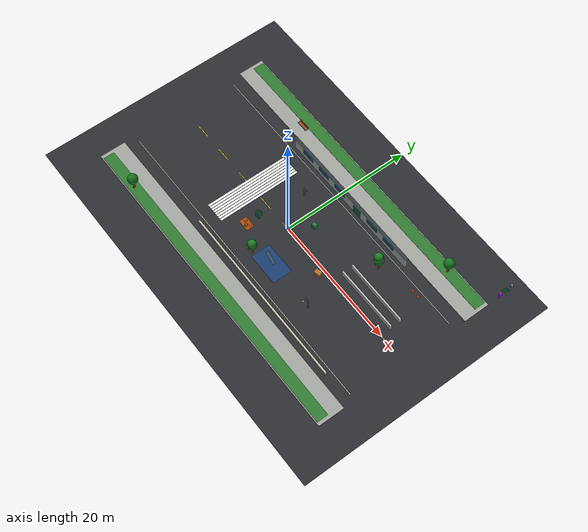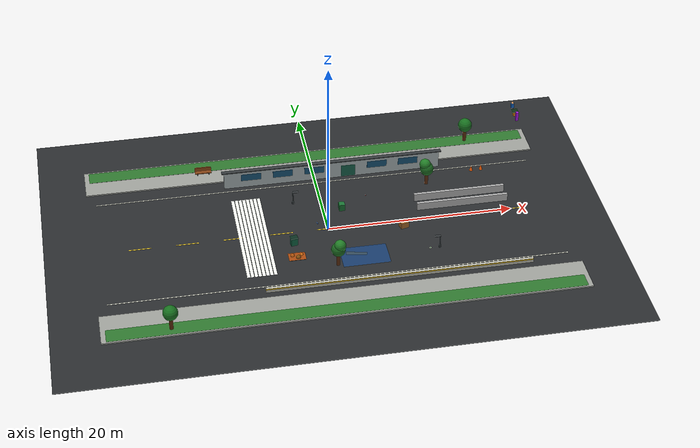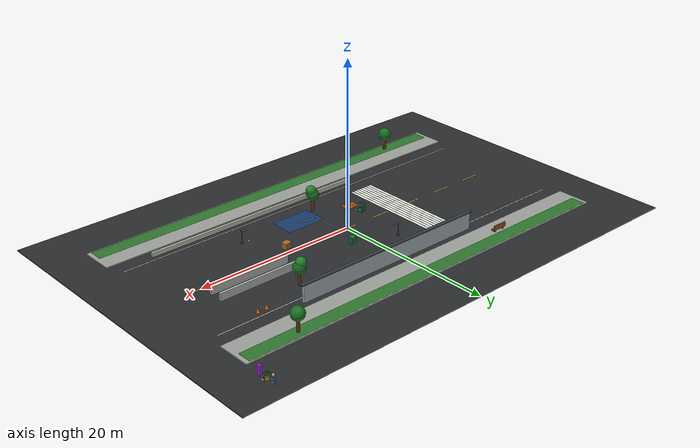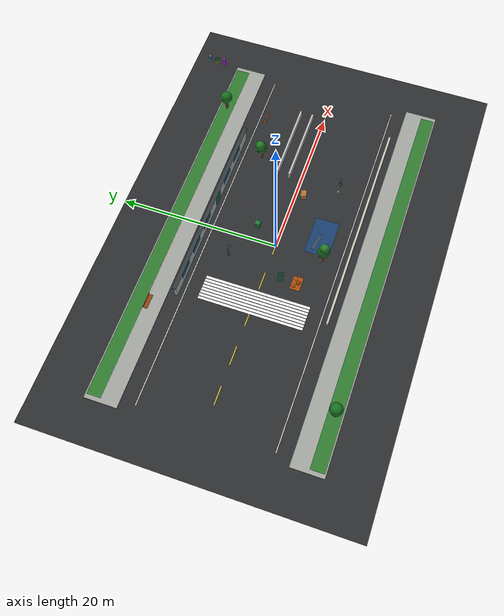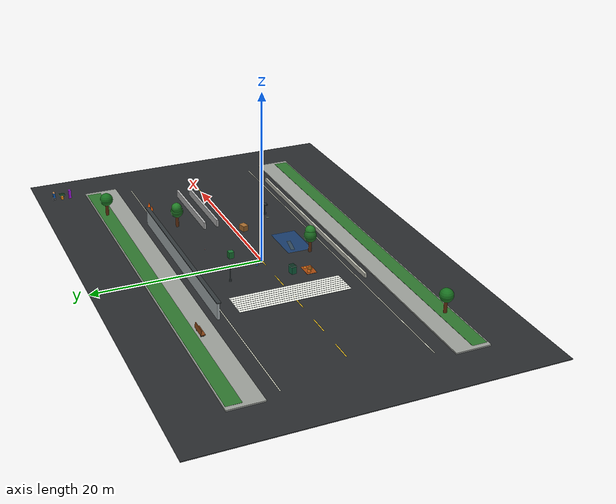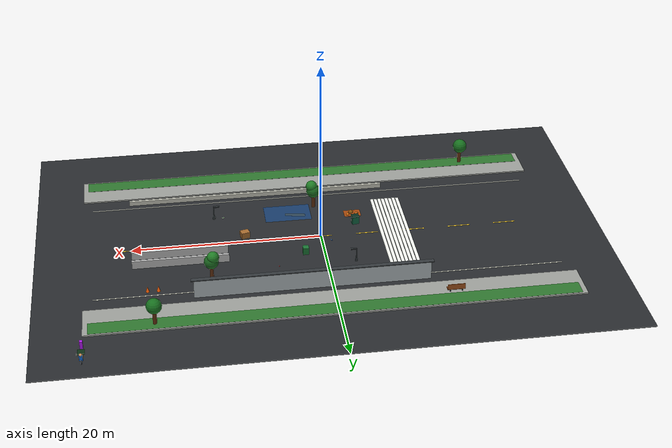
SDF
<?xml version='1.0' encoding='utf-8'?>
<sdf version="1.9">
  <world name="sanitation_structured_world">
    <plugin filename="gz-sim-physics-system" name="gz::sim::systems::Physics" />
    <plugin filename="gz-sim-user-commands-system" name="gz::sim::systems::UserCommands" />
    <plugin filename="gz-sim-scene-broadcaster-system" name="gz::sim::systems::SceneBroadcaster" />
    <plugin filename="gz-sim-sensors-system" name="gz::sim::systems::Sensors">
      <render_engine>ogre2</render_engine>
    </plugin>
    <plugin filename="gz-sim-navsat-system" name="gz::sim::systems::NavSat" />
    <spherical_coordinates>
      <surface_model>EARTH_WGS84</surface_model>
      <world_frame_orientation>ENU</world_frame_orientation>
      <latitude_deg>31.2304</latitude_deg>
      <longitude_deg>121.4737</longitude_deg>
      <elevation>0</elevation>
      <heading_deg>0</heading_deg>
    </spherical_coordinates>
    <gravity>0 0 -9.81</gravity>
    <physics name="1ms" type="ignored">
      <max_step_size>0.005</max_step_size>
      <real_time_factor>1.0</real_time_factor>
    </physics>
    <scene>
      <ambient>0.58 0.60 0.62 1</ambient>
      <background>0.72 0.84 0.94 1</background>
      <shadows>true</shadows>
    </scene>
    <light type="directional" name="sun">
      <cast_shadows>true</cast_shadows>
      <pose>0 0 10 0 0 0</pose>
      <diffuse>0.96 0.91 0.82 1</diffuse>
      <specular>0.16 0.16 0.16 1</specular>
      <direction>-0.45 0.25 -1.0</direction>
    </light>
    <model name="world_overview_camera">
      <static>true</static>
      <pose>0 0 28 0 1.57079632679 0</pose>
      <link name="link">
        <sensor name="overview" type="camera">
          <always_on>true</always_on>
          <update_rate>1</update_rate>
          <topic>world_overview/image</topic>
          <camera>
            <horizontal_fov>1.55</horizontal_fov>
            <image>
              <width>960</width>
              <height>640</height>
              <format>R8G8B8</format>
            </image>
            <clip>
              <near>0.1</near>
              <far>100</far>
            </clip>
          </camera>
        </sensor>
      </link>
    </model>
    <model name="asphalt_ground">
      <static>true</static>
      <link name="link">
        <collision name="collision">
          <geometry>
            <box>
              <size>60 40 0.10</size>
            </box>
          </geometry>
          <surface>
            <friction>
              <ode>
                <mu>0.85</mu>
                <mu2>0.85</mu2>
              </ode>
            </friction>
          </surface>
        </collision>
        <visual name="visual">
          <geometry>
            <box>
              <size>60 40 0.10</size>
            </box>
          </geometry>
          <material>
            <ambient>0.105 0.115 0.12 1</ambient>
            <diffuse>0.16 0.17 0.18 1</diffuse>
            <specular>0.02 0.02 0.02 1</specular>
          </material>
        </visual>
      </link>
      <pose>0 0 -0.05 0 0 0</pose>
    </model>
    <model name="north_sidewalk">
      <static>true</static>
      <pose>0 12 0.08 0 0 0</pose>
      <link name="link">
        <collision name="collision">
          <geometry>
            <box>
              <size>50 4 0.16</size>
            </box>
          </geometry>
        </collision>
        <visual name="visual">
          <geometry>
            <box>
              <size>50 4 0.16</size>
            </box>
          </geometry>
          <material>
            <ambient>0.47 0.48 0.47 1</ambient>
            <diffuse>0.61 0.62 0.60 1</diffuse>
            <specular>0.04 0.04 0.04 1</specular>
          </material>
        </visual>
      </link>
    </model>
    <model name="south_sidewalk">
      <static>true</static>
      <pose>0 -12 0.08 0 0 0</pose>
      <link name="link">
        <collision name="collision">
          <geometry>
            <box>
              <size>50 4 0.16</size>
            </box>
          </geometry>
        </collision>
        <visual name="visual">
          <geometry>
            <box>
              <size>50 4 0.16</size>
            </box>
          </geometry>
          <material>
            <ambient>0.47 0.48 0.47 1</ambient>
            <diffuse>0.61 0.62 0.60 1</diffuse>
            <specular>0.04 0.04 0.04 1</specular>
          </material>
        </visual>
      </link>
    </model>
    <!-- Paint and planting surfaces are visual-only because they do not add
         occupancy. Raised sidewalks above remain the authoritative collision
         and navigation boundary. -->
    <model name="campus_road_markings">
      <static>true</static>
      <pose>0 0 0.006 0 0 0</pose>
      <link name="link">
        <visual name="edge_line_north"><pose>0 8.2 0 0 0 0</pose><geometry><box><size>48 0.10 0.008</size></box></geometry><material><ambient>0.88 0.89 0.82 1</ambient><diffuse>0.98 0.98 0.90 1</diffuse></material></visual>
        <visual name="edge_line_south"><pose>0 -8.2 0 0 0 0</pose><geometry><box><size>48 0.10 0.008</size></box></geometry><material><ambient>0.88 0.89 0.82 1</ambient><diffuse>0.98 0.98 0.90 1</diffuse></material></visual>
        <visual name="center_dash_01"><pose>-20 0 0 0 0 0</pose><geometry><box><size>2.4 0.12 0.008</size></box></geometry><material><ambient>0.88 0.72 0.12 1</ambient><diffuse>1.0 0.82 0.16 1</diffuse></material></visual>
        <visual name="center_dash_02"><pose>-15 0 0 0 0 0</pose><geometry><box><size>2.4 0.12 0.008</size></box></geometry><material><ambient>0.88 0.72 0.12 1</ambient><diffuse>1.0 0.82 0.16 1</diffuse></material></visual>
        <visual name="center_dash_03"><pose>-10 0 0 0 0 0</pose><geometry><box><size>2.4 0.12 0.008</size></box></geometry><material><ambient>0.88 0.72 0.12 1</ambient><diffuse>1.0 0.82 0.16 1</diffuse></material></visual>
        <visual name="center_dash_04"><pose>-5 0 0 0 0 0</pose><geometry><box><size>2.4 0.12 0.008</size></box></geometry><material><ambient>0.88 0.72 0.12 1</ambient><diffuse>1.0 0.82 0.16 1</diffuse></material></visual>
        <visual name="center_dash_05"><pose>0 0 0 0 0 0</pose><geometry><box><size>2.4 0.12 0.008</size></box></geometry><material><ambient>0.88 0.72 0.12 1</ambient><diffuse>1.0 0.82 0.16 1</diffuse></material></visual>
        <visual name="center_dash_06"><pose>5 0 0 0 0 0</pose><geometry><box><size>2.4 0.12 0.008</size></box></geometry><material><ambient>0.88 0.72 0.12 1</ambient><diffuse>1.0 0.82 0.16 1</diffuse></material></visual>
        <visual name="center_dash_07"><pose>10 0 0 0 0 0</pose><geometry><box><size>2.4 0.12 0.008</size></box></geometry><material><ambient>0.88 0.72 0.12 1</ambient><diffuse>1.0 0.82 0.16 1</diffuse></material></visual>
        <visual name="center_dash_08"><pose>15 0 0 0 0 0</pose><geometry><box><size>2.4 0.12 0.008</size></box></geometry><material><ambient>0.88 0.72 0.12 1</ambient><diffuse>1.0 0.82 0.16 1</diffuse></material></visual>
        <visual name="center_dash_09"><pose>20 0 0 0 0 0</pose><geometry><box><size>2.4 0.12 0.008</size></box></geometry><material><ambient>0.88 0.72 0.12 1</ambient><diffuse>1.0 0.82 0.16 1</diffuse></material></visual>
      </link>
    </model>
    <model name="campus_crosswalk_west">
      <static>true</static>
      <pose>-8 0 0.009 0 0 0</pose>
      <link name="link">
        <visual name="stripe_01"><pose>-1.4 0 0 0 0 0</pose><geometry><box><size>0.34 13.0 0.01</size></box></geometry><material><ambient>0.82 0.84 0.82 1</ambient><diffuse>0.96 0.97 0.94 1</diffuse></material></visual>
        <visual name="stripe_02"><pose>-1.0 0 0 0 0 0</pose><geometry><box><size>0.34 13.0 0.01</size></box></geometry><material><ambient>0.82 0.84 0.82 1</ambient><diffuse>0.96 0.97 0.94 1</diffuse></material></visual>
        <visual name="stripe_03"><pose>-0.6 0 0 0 0 0</pose><geometry><box><size>0.34 13.0 0.01</size></box></geometry><material><ambient>0.82 0.84 0.82 1</ambient><diffuse>0.96 0.97 0.94 1</diffuse></material></visual>
        <visual name="stripe_04"><pose>-0.2 0 0 0 0 0</pose><geometry><box><size>0.34 13.0 0.01</size></box></geometry><material><ambient>0.82 0.84 0.82 1</ambient><diffuse>0.96 0.97 0.94 1</diffuse></material></visual>
        <visual name="stripe_05"><pose>0.2 0 0 0 0 0</pose><geometry><box><size>0.34 13.0 0.01</size></box></geometry><material><ambient>0.82 0.84 0.82 1</ambient><diffuse>0.96 0.97 0.94 1</diffuse></material></visual>
        <visual name="stripe_06"><pose>0.6 0 0 0 0 0</pose><geometry><box><size>0.34 13.0 0.01</size></box></geometry><material><ambient>0.82 0.84 0.82 1</ambient><diffuse>0.96 0.97 0.94 1</diffuse></material></visual>
        <visual name="stripe_07"><pose>1.0 0 0 0 0 0</pose><geometry><box><size>0.34 13.0 0.01</size></box></geometry><material><ambient>0.82 0.84 0.82 1</ambient><diffuse>0.96 0.97 0.94 1</diffuse></material></visual>
        <visual name="stripe_08"><pose>1.4 0 0 0 0 0</pose><geometry><box><size>0.34 13.0 0.01</size></box></geometry><material><ambient>0.82 0.84 0.82 1</ambient><diffuse>0.96 0.97 0.94 1</diffuse></material></visual>
      </link>
    </model>
    <model name="campus_green_verges">
      <static>true</static>
      <pose>0 0 0.171 0 0 0</pose>
      <link name="link">
        <visual name="north_verge"><pose>0 13.0 0 0 0 0</pose><geometry><box><size>49 1.7 0.018</size></box></geometry><material><ambient>0.12 0.34 0.13 1</ambient><diffuse>0.18 0.46 0.18 1</diffuse></material></visual>
        <visual name="south_verge"><pose>0 -13.0 0 0 0 0</pose><geometry><box><size>49 1.7 0.018</size></box></geometry><material><ambient>0.12 0.34 0.13 1</ambient><diffuse>0.18 0.46 0.18 1</diffuse></material></visual>
      </link>
    </model>
    <model name="corridor_wall_left">
      <static>true</static>
      <pose>15 3.2 0.45 0 0 0</pose>
      <link name="link">
        <collision name="collision">
          <geometry>
            <box>
              <size>10 0.25 0.9</size>
            </box>
          </geometry>
        </collision>
        <visual name="visual">
          <geometry>
            <box>
              <size>10 0.25 0.9</size>
            </box>
          </geometry>
        </visual>
      </link>
    </model>
    <model name="corridor_wall_right">
      <static>true</static>
      <pose>15 1.6 0.45 0 0 0</pose>
      <link name="link">
        <collision name="collision">
          <geometry>
            <box>
              <size>10 0.25 0.9</size>
            </box>
          </geometry>
        </collision>
        <visual name="visual">
          <geometry>
            <box>
              <size>10 0.25 0.9</size>
            </box>
          </geometry>
        </visual>
      </link>
    </model>
    <model name="puddle_zone">
      <static>true</static>
      <pose>3 -5 0.005 0 0 0</pose>
      <link name="link">
        <collision name="collision">
          <geometry>
            <box>
              <size>5 3 0.01</size>
            </box>
          </geometry>
          <surface>
            <friction>
              <ode>
                <mu>0.25</mu>
                <mu2>0.25</mu2>
              </ode>
            </friction>
          </surface>
        </collision>
        <visual name="puddle_main_visual">
          <geometry>
            <box>
              <size>5 3 0.01</size>
            </box>
          </geometry>
          <material>
            <ambient>0.05 0.25 0.55 0.45</ambient>
            <diffuse>0.05 0.35 0.75 0.45</diffuse>
          </material>
          <transparency>0.55</transparency>
        </visual>
        <visual name="puddle_highlight_visual">
          <pose>-0.8 0.45 0.006 0 0 -0.18</pose>
          <geometry><box><size>2.2 0.45 0.004</size></box></geometry>
          <material><ambient>0.22 0.50 0.72 0.30</ambient><diffuse>0.32 0.62 0.82 0.30</diffuse></material>
          <transparency>0.72</transparency>
        </visual>
      </link>
    </model>
    <model name="trash_bin_obstacle">
      <static>true</static>
      <pose>2 3 0.45 0 0 0</pose>
      <link name="link">
        <collision name="collision">
          <geometry>
            <box>
              <size>0.7 0.7 0.9</size>
            </box>
          </geometry>
        </collision>
        <visual name="bin_body_visual">
          <geometry>
            <box>
              <size>0.62 0.62 0.78</size>
            </box>
          </geometry>
          <material>
            <ambient>0.1 0.35 0.15 1</ambient>
            <diffuse>0.1 0.45 0.2 1</diffuse>
          </material>
        </visual>
      </link>
    </model>
    <model name="cardboard_box_obstacle">
      <static>true</static>
      <pose>8 -1 0.35 0 0 0.25</pose>
      <link name="link">
        <collision name="collision">
          <geometry>
            <box>
              <size>0.9 0.7 0.7</size>
            </box>
          </geometry>
        </collision>
        <visual name="visual">
          <geometry>
            <box>
              <size>0.9 0.7 0.7</size>
            </box>
          </geometry>
          <material>
            <ambient>0.55 0.32 0.12 1</ambient>
            <diffuse>0.65 0.42 0.18 1</diffuse>
          </material>
        </visual>
      </link>
    </model>
    <model name="dynamic_pedestrian_box">
      <static>true</static>
      <pose>25 18 0.55 0 0 0</pose>
      <link name="link">
        <collision name="collision">
          <geometry>
            <box>
              <size>0.55 0.55 1.10</size>
            </box>
          </geometry>
        </collision>
        <!-- Human-readable silhouette; the legacy box collision is retained
             so SetEntityPose dynamic-obstacle regressions keep the same body. -->
        <visual name="pedestrian_torso_visual"><pose>0 0 0.12 0 0 0</pose><geometry><box><size>0.34 0.25 0.52</size></box></geometry><material><ambient>0.06 0.30 0.62 1</ambient><diffuse>0.08 0.42 0.82 1</diffuse></material></visual>
        <visual name="pedestrian_head_visual"><pose>0 0 0.49 0 0 0</pose><geometry><sphere><radius>0.15</radius></sphere></geometry><material><ambient>0.72 0.48 0.30 1</ambient><diffuse>0.84 0.60 0.39 1</diffuse></material></visual>
        <visual name="pedestrian_left_leg_visual"><pose>0 0.10 -0.28 0 0 0</pose><geometry><box><size>0.13 0.12 0.46</size></box></geometry><material><ambient>0.07 0.08 0.10 1</ambient><diffuse>0.10 0.12 0.15 1</diffuse></material></visual>
        <visual name="pedestrian_right_leg_visual"><pose>0 -0.10 -0.28 0 0 0</pose><geometry><box><size>0.13 0.12 0.46</size></box></geometry><material><ambient>0.07 0.08 0.10 1</ambient><diffuse>0.10 0.12 0.15 1</diffuse></material></visual>
        <visual name="pedestrian_safety_vest_visual"><pose>0.176 0 0.13 0 0 0</pose><geometry><box><size>0.012 0.27 0.22</size></box></geometry><material><ambient>0.88 0.36 0.02 1</ambient><diffuse>1.0 0.48 0.03 1</diffuse></material></visual>
      </link>
    </model>
    <!-- AUTO-01 height-banded safety fixtures. They remain outside the
         benchmark area until a test moves them with SetEntityPose. -->
    <model name="auto01_low_obstacle">
      <static>true</static>
      <pose>25 17 0.175 0 0 0</pose>
      <link name="link">
        <collision name="collision">
          <geometry><box><size>0.30 0.30 0.35</size></box></geometry>
        </collision>
        <visual name="box_body_visual">
          <geometry><box><size>0.30 0.30 0.35</size></box></geometry>
          <material>
            <ambient>0.95 0.50 0.05 1</ambient>
            <diffuse>1.0 0.60 0.08 1</diffuse>
          </material>
        </visual>
        <visual name="box_tape_visual"><pose>0 0 0.356 0 0 0</pose><geometry><box><size>0.16 0.71 0.012</size></box></geometry><material><ambient>0.76 0.67 0.44 1</ambient><diffuse>0.88 0.77 0.50 1</diffuse></material></visual>
        <visual name="box_label_visual"><pose>0.456 0 0.06 0 0 0</pose><geometry><box><size>0.012 0.28 0.18</size></box></geometry><material><ambient>0.84 0.84 0.76 1</ambient><diffuse>0.96 0.96 0.88 1</diffuse></material></visual>
        <visual name="bin_lid_visual"><pose>0 0 0.43 0 0 0</pose><geometry><box><size>0.70 0.70 0.10</size></box></geometry><material><ambient>0.035 0.12 0.06 1</ambient><diffuse>0.05 0.18 0.08 1</diffuse></material></visual>
        <visual name="bin_opening_visual"><pose>0.316 0 0.18 0 0 0</pose><geometry><box><size>0.012 0.36 0.20</size></box></geometry><material><ambient>0.015 0.02 0.02 1</ambient><diffuse>0.02 0.025 0.025 1</diffuse></material></visual>
        <visual name="bin_recycle_strip_visual"><pose>0.323 0 -0.12 0 0 0</pose><geometry><box><size>0.014 0.39 0.08</size></box></geometry><material><ambient>0.02 0.48 0.68 1</ambient><diffuse>0.03 0.62 0.82 1</diffuse></material></visual>
      </link>
    </model>
    <model name="auto01_tall_obstacle">
      <static>true</static>
      <pose>25 16 0.55 0 0 0</pose>
      <link name="link">
        <collision name="collision">
          <geometry><box><size>0.30 0.30 1.10</size></box></geometry>
        </collision>
        <visual name="visual">
          <geometry><box><size>0.30 0.30 1.10</size></box></geometry>
          <material>
            <ambient>0.55 0.05 0.85 1</ambient>
            <diffuse>0.70 0.10 0.95 1</diffuse>
          </material>
        </visual>
      </link>
    </model>
    <model name="trash_bottle_01">
      <static>true</static>
      <pose>-1 1 0.12 1.57 0 0.4</pose>
      <link name="link">
        <collision name="collision">
          <geometry>
            <cylinder>
              <radius>0.045</radius>
              <length>0.24</length>
            </cylinder>
          </geometry>
        </collision>
        <visual name="bottle_body_visual">
          <geometry>
            <cylinder>
              <radius>0.045</radius>
              <length>0.24</length>
            </cylinder>
          </geometry>
          <material>
            <ambient>0.1 0.35 0.8 1</ambient>
            <diffuse>0.15 0.45 0.9 1</diffuse>
          </material>
        </visual>
        <visual name="bottle_cap_visual"><pose>0 0 0.128 0 0 0</pose><geometry><cylinder><radius>0.026</radius><length>0.022</length></cylinder></geometry><material><ambient>0.04 0.12 0.50 1</ambient><diffuse>0.06 0.18 0.68 1</diffuse></material></visual>
        <visual name="bottle_label_visual"><geometry><cylinder><radius>0.047</radius><length>0.055</length></cylinder></geometry><material><ambient>0.72 0.82 0.90 1</ambient><diffuse>0.82 0.92 1.0 1</diffuse></material></visual>
      </link>
    </model>
    <model name="trash_can_01">
      <static>true</static>
      <pose>5 5 0.055 1.57 0 0.2</pose>
      <link name="link">
        <collision name="collision">
          <geometry>
            <cylinder>
              <radius>0.035</radius>
              <length>0.11</length>
            </cylinder>
          </geometry>
        </collision>
        <visual name="can_body_visual">
          <geometry>
            <cylinder>
              <radius>0.035</radius>
              <length>0.11</length>
            </cylinder>
          </geometry>
          <material>
            <ambient>0.75 0.1 0.1 1</ambient>
            <diffuse>0.9 0.15 0.15 1</diffuse>
          </material>
        </visual>
        <visual name="can_band_visual"><geometry><cylinder><radius>0.037</radius><length>0.035</length></cylinder></geometry><material><ambient>0.82 0.82 0.78 1</ambient><diffuse>0.94 0.94 0.90 1</diffuse></material></visual>
      </link>
    </model>
    <model name="trash_paper_01">
      <static>true</static>
      <pose>10 -5 0.012 0 0 0.5</pose>
      <link name="link">
        <collision name="collision">
          <geometry>
            <box>
              <size>0.24 0.18 0.02</size>
            </box>
          </geometry>
        </collision>
        <visual name="carton_body_visual">
          <geometry>
            <box>
              <size>0.24 0.18 0.02</size>
            </box>
          </geometry>
          <material>
            <ambient>0.9 0.9 0.8 1</ambient>
            <diffuse>1 1 0.9 1</diffuse>
          </material>
        </visual>
        <visual name="carton_print_visual"><pose>0 0 0.011 0 0 0</pose><geometry><box><size>0.12 0.08 0.004</size></box></geometry><material><ambient>0.15 0.46 0.20 1</ambient><diffuse>0.20 0.62 0.28 1</diffuse></material></visual>
      </link>
    </model>
    <model name="leaf_pile_01">
      <static>true</static>
      <pose>-4 -4 0.015 0 0 0</pose>
      <link name="link">
        <collision name="collision">
          <geometry>
            <box>
              <size>1.8 1.2 0.03</size>
            </box>
          </geometry>
        </collision>
        <visual name="leaf_bed_visual">
          <geometry>
            <box>
              <size>1.8 1.2 0.03</size>
            </box>
          </geometry>
          <material>
            <ambient>0.45 0.18 0.03 1</ambient>
            <diffuse>0.65 0.28 0.05 1</diffuse>
          </material>
        </visual>
        <visual name="leaf_cluster_01"><pose>-0.45 0.18 0.025 0 0 0</pose><geometry><sphere><radius>0.22</radius></sphere></geometry><material><ambient>0.52 0.24 0.03 1</ambient><diffuse>0.72 0.34 0.05 1</diffuse></material></visual>
        <visual name="leaf_cluster_02"><pose>0.12 -0.18 0.03 0 0 0</pose><geometry><sphere><radius>0.26</radius></sphere></geometry><material><ambient>0.36 0.20 0.03 1</ambient><diffuse>0.52 0.31 0.05 1</diffuse></material></visual>
        <visual name="leaf_cluster_03"><pose>0.52 0.22 0.02 0 0 0</pose><geometry><sphere><radius>0.18</radius></sphere></geometry><material><ambient>0.62 0.31 0.04 1</ambient><diffuse>0.82 0.42 0.06 1</diffuse></material></visual>
      </link>
    </model>
    <model name="structured_building_north">
      <static>true</static>
      <pose>2.0 9.0 1.0 0 0 0.0</pose>
      <link name="link">
        <collision name="collision">
          <geometry>
            <box>
              <size>24.0 0.3 2.0</size>
            </box>
          </geometry>
        </collision>
        <visual name="facade_visual">
          <geometry>
            <box>
              <size>24.0 0.3 2.0</size>
            </box>
          </geometry>
          <material><ambient>0.48 0.52 0.54 1</ambient><diffuse>0.68 0.72 0.73 1</diffuse></material>
        </visual>
        <visual name="roof_cap_visual"><pose>0 0 1.05 0 0 0</pose><geometry><box><size>24.5 0.48 0.10</size></box></geometry><material><ambient>0.12 0.14 0.15 1</ambient><diffuse>0.20 0.22 0.23 1</diffuse></material></visual>
        <visual name="window_01"><pose>-9.0 -0.156 0.25 0 0 0</pose><geometry><box><size>2.2 0.014 0.82</size></box></geometry><material><ambient>0.06 0.20 0.30 1</ambient><diffuse>0.10 0.34 0.48 1</diffuse></material></visual>
        <visual name="window_02"><pose>-5.5 -0.156 0.25 0 0 0</pose><geometry><box><size>2.2 0.014 0.82</size></box></geometry><material><ambient>0.06 0.20 0.30 1</ambient><diffuse>0.10 0.34 0.48 1</diffuse></material></visual>
        <visual name="window_03"><pose>-2.0 -0.156 0.25 0 0 0</pose><geometry><box><size>2.2 0.014 0.82</size></box></geometry><material><ambient>0.06 0.20 0.30 1</ambient><diffuse>0.10 0.34 0.48 1</diffuse></material></visual>
        <visual name="service_door"><pose>1.8 -0.157 -0.24 0 0 0</pose><geometry><box><size>1.55 0.016 1.42</size></box></geometry><material><ambient>0.08 0.25 0.20 1</ambient><diffuse>0.10 0.40 0.31 1</diffuse></material></visual>
        <visual name="window_04"><pose>5.0 -0.156 0.25 0 0 0</pose><geometry><box><size>2.2 0.014 0.82</size></box></geometry><material><ambient>0.06 0.20 0.30 1</ambient><diffuse>0.10 0.34 0.48 1</diffuse></material></visual>
        <visual name="window_05"><pose>8.5 -0.156 0.25 0 0 0</pose><geometry><box><size>2.2 0.014 0.82</size></box></geometry><material><ambient>0.06 0.20 0.30 1</ambient><diffuse>0.10 0.34 0.48 1</diffuse></material></visual>
      </link>
    </model>
    <model name="structured_curb_south">
      <static>true</static>
      <pose>6.0 -9.0 0.25 0 0 0.0</pose>
      <link name="link">
        <collision name="collision">
          <geometry>
            <box>
              <size>28.0 0.25 0.5</size>
            </box>
          </geometry>
        </collision>
        <visual name="curb_body_visual">
          <geometry>
            <box>
              <size>28.0 0.25 0.5</size>
            </box>
          </geometry>
          <material><ambient>0.60 0.60 0.56 1</ambient><diffuse>0.76 0.76 0.71 1</diffuse></material>
        </visual>
        <visual name="curb_warning_band_visual"><pose>0 -0.131 0.14 0 0 0</pose><geometry><box><size>28.0 0.012 0.12</size></box></geometry><material><ambient>0.86 0.67 0.05 1</ambient><diffuse>0.98 0.78 0.07 1</diffuse></material></visual>
      </link>
    </model>
    <model name="structured_lamp_west">
      <static>true</static>
      <pose>-3.0 5.0 0.75 0 0 0.0</pose>
      <link name="link">
        <collision name="collision">
          <geometry>
            <box>
              <size>0.25 0.25 1.5</size>
            </box>
          </geometry>
        </collision>
        <visual name="lamp_base_visual"><pose>0 0 -0.63 0 0 0</pose><geometry><cylinder><radius>0.15</radius><length>0.24</length></cylinder></geometry><material><ambient>0.12 0.14 0.15 1</ambient><diffuse>0.20 0.23 0.24 1</diffuse></material></visual>
        <visual name="lamp_pole_visual"><geometry><cylinder><radius>0.055</radius><length>1.5</length></cylinder></geometry><material><ambient>0.18 0.21 0.22 1</ambient><diffuse>0.30 0.34 0.35 1</diffuse></material></visual>
        <visual name="lamp_head_visual"><pose>0.28 0 0.76 0 0 0</pose><geometry><box><size>0.62 0.22 0.12</size></box></geometry><material><ambient>0.09 0.11 0.12 1</ambient><diffuse>0.16 0.18 0.19 1</diffuse></material></visual>
        <visual name="lamp_emitter_visual"><pose>0.28 0 0.695 0 0 0</pose><geometry><box><size>0.44 0.15 0.015</size></box></geometry><material><ambient>0.95 0.84 0.52 1</ambient><diffuse>1.0 0.94 0.72 1</diffuse><emissive>0.35 0.28 0.12 1</emissive></material></visual>
      </link>
    </model>
    <model name="structured_lamp_east">
      <static>true</static>
      <pose>11.0 -5.0 0.75 0 0 0.0</pose>
      <link name="link">
        <collision name="collision">
          <geometry>
            <box>
              <size>0.25 0.25 1.5</size>
            </box>
          </geometry>
        </collision>
        <visual name="lamp_base_visual"><pose>0 0 -0.63 0 0 0</pose><geometry><cylinder><radius>0.15</radius><length>0.24</length></cylinder></geometry><material><ambient>0.12 0.14 0.15 1</ambient><diffuse>0.20 0.23 0.24 1</diffuse></material></visual>
        <visual name="lamp_pole_visual"><geometry><cylinder><radius>0.055</radius><length>1.5</length></cylinder></geometry><material><ambient>0.18 0.21 0.22 1</ambient><diffuse>0.30 0.34 0.35 1</diffuse></material></visual>
        <visual name="lamp_head_visual"><pose>-0.28 0 0.76 0 0 0</pose><geometry><box><size>0.62 0.22 0.12</size></box></geometry><material><ambient>0.09 0.11 0.12 1</ambient><diffuse>0.16 0.18 0.19 1</diffuse></material></visual>
        <visual name="lamp_emitter_visual"><pose>-0.28 0 0.695 0 0 0</pose><geometry><box><size>0.44 0.15 0.015</size></box></geometry><material><ambient>0.95 0.84 0.52 1</ambient><diffuse>1.0 0.94 0.72 1</diffuse><emissive>0.35 0.28 0.12 1</emissive></material></visual>
      </link>
    </model>
    <model name="structured_tree_south">
      <static>true</static>
      <pose>0.0 -6.0 0.9 0 0 0.0</pose>
      <link name="link">
        <collision name="collision">
          <geometry>
            <box>
              <size>0.45 0.45 1.8</size>
            </box>
          </geometry>
        </collision>
        <visual name="tree_trunk_visual"><geometry><cylinder><radius>0.19</radius><length>1.8</length></cylinder></geometry><material><ambient>0.25 0.12 0.045 1</ambient><diffuse>0.38 0.19 0.07 1</diffuse></material></visual>
        <visual name="tree_canopy_low_visual"><pose>0 0 1.10 0 0 0</pose><geometry><sphere><radius>0.75</radius></sphere></geometry><material><ambient>0.06 0.25 0.08 1</ambient><diffuse>0.10 0.40 0.12 1</diffuse></material></visual>
        <visual name="tree_canopy_high_visual"><pose>0.18 -0.08 1.65 0 0 0</pose><geometry><sphere><radius>0.62</radius></sphere></geometry><material><ambient>0.08 0.31 0.10 1</ambient><diffuse>0.13 0.49 0.15 1</diffuse></material></visual>
      </link>
    </model>
    <model name="structured_tree_north">
      <static>true</static>
      <pose>12.0 6.0 0.9 0 0 0.0</pose>
      <link name="link">
        <collision name="collision">
          <geometry>
            <box>
              <size>0.45 0.45 1.8</size>
            </box>
          </geometry>
        </collision>
        <visual name="tree_trunk_visual"><geometry><cylinder><radius>0.19</radius><length>1.8</length></cylinder></geometry><material><ambient>0.25 0.12 0.045 1</ambient><diffuse>0.38 0.19 0.07 1</diffuse></material></visual>
        <visual name="tree_canopy_low_visual"><pose>0 0 1.10 0 0 0</pose><geometry><sphere><radius>0.75</radius></sphere></geometry><material><ambient>0.06 0.25 0.08 1</ambient><diffuse>0.10 0.40 0.12 1</diffuse></material></visual>
        <visual name="tree_canopy_high_visual"><pose>-0.18 0.08 1.65 0 0 0</pose><geometry><sphere><radius>0.62</radius></sphere></geometry><material><ambient>0.08 0.31 0.10 1</ambient><diffuse>0.13 0.49 0.15 1</diffuse></material></visual>
      </link>
    </model>
    <model name="structured_waste_bin">
      <static>true</static>
      <pose>-4.0 -2.0 0.5 0 0 0.15</pose>
      <link name="link">
        <collision name="collision">
          <geometry>
            <box>
              <size>0.8 0.65 1.0</size>
            </box>
          </geometry>
        </collision>
        <visual name="waste_bin_body_visual"><geometry><box><size>0.72 0.57 0.88</size></box></geometry><material><ambient>0.05 0.25 0.17 1</ambient><diffuse>0.07 0.40 0.27 1</diffuse></material></visual>
        <visual name="waste_bin_lid_visual"><pose>0 0 0.47 0 0 0</pose><geometry><box><size>0.80 0.65 0.08</size></box></geometry><material><ambient>0.025 0.10 0.07 1</ambient><diffuse>0.04 0.18 0.12 1</diffuse></material></visual>
        <visual name="waste_bin_opening_visual"><pose>0.366 0 0.18 0 0 0</pose><geometry><box><size>0.012 0.34 0.22</size></box></geometry><material><ambient>0.01 0.015 0.015 1</ambient><diffuse>0.015 0.02 0.02 1</diffuse></material></visual>
        <visual name="waste_bin_label_visual"><pose>0.373 0 -0.12 0 0 0</pose><geometry><box><size>0.014 0.28 0.12</size></box></geometry><material><ambient>0.88 0.88 0.76 1</ambient><diffuse>1.0 1.0 0.88 1</diffuse></material></visual>
      </link>
    </model>
    <model name="campus_bench_north">
      <static>true</static>
      <pose>-12 11.7 0.55 0 0 0</pose>
      <link name="link">
        <collision name="collision"><geometry><box><size>1.8 0.55 0.9</size></box></geometry></collision>
        <visual name="seat_visual"><pose>0 0 -0.12 0 0 0</pose><geometry><box><size>1.8 0.46 0.10</size></box></geometry><material><ambient>0.34 0.16 0.055 1</ambient><diffuse>0.52 0.26 0.08 1</diffuse></material></visual>
        <visual name="back_visual"><pose>0 0.22 0.18 0.22 0 0</pose><geometry><box><size>1.8 0.08 0.52</size></box></geometry><material><ambient>0.34 0.16 0.055 1</ambient><diffuse>0.52 0.26 0.08 1</diffuse></material></visual>
        <visual name="leg_left_visual"><pose>-0.62 0 -0.39 0 0 0</pose><geometry><box><size>0.10 0.42 0.48</size></box></geometry><material><ambient>0.10 0.11 0.11 1</ambient><diffuse>0.18 0.20 0.20 1</diffuse></material></visual>
        <visual name="leg_right_visual"><pose>0.62 0 -0.39 0 0 0</pose><geometry><box><size>0.10 0.42 0.48</size></box></geometry><material><ambient>0.10 0.11 0.11 1</ambient><diffuse>0.18 0.20 0.20 1</diffuse></material></visual>
      </link>
    </model>
    <model name="campus_tree_west">
      <static>true</static>
      <pose>-18 -13 1.08 0 0 0</pose>
      <link name="link">
        <collision name="collision"><pose>0 0 -0.18 0 0 0</pose><geometry><cylinder><radius>0.22</radius><length>1.8</length></cylinder></geometry></collision>
        <visual name="trunk_visual"><pose>0 0 -0.18 0 0 0</pose><geometry><cylinder><radius>0.20</radius><length>1.8</length></cylinder></geometry><material><ambient>0.25 0.12 0.04 1</ambient><diffuse>0.38 0.19 0.06 1</diffuse></material></visual>
        <visual name="canopy_visual"><pose>0 0 1.15 0 0 0</pose><geometry><sphere><radius>0.78</radius></sphere></geometry><material><ambient>0.05 0.26 0.08 1</ambient><diffuse>0.09 0.44 0.12 1</diffuse></material></visual>
      </link>
    </model>
    <model name="campus_tree_east">
      <static>true</static>
      <pose>18 13 1.08 0 0 0</pose>
      <link name="link">
        <collision name="collision"><pose>0 0 -0.18 0 0 0</pose><geometry><cylinder><radius>0.22</radius><length>1.8</length></cylinder></geometry></collision>
        <visual name="trunk_visual"><pose>0 0 -0.18 0 0 0</pose><geometry><cylinder><radius>0.20</radius><length>1.8</length></cylinder></geometry><material><ambient>0.25 0.12 0.04 1</ambient><diffuse>0.38 0.19 0.06 1</diffuse></material></visual>
        <visual name="canopy_visual"><pose>0 0 1.15 0 0 0</pose><geometry><sphere><radius>0.78</radius></sphere></geometry><material><ambient>0.05 0.26 0.08 1</ambient><diffuse>0.09 0.44 0.12 1</diffuse></material></visual>
      </link>
    </model>
    <model name="campus_safety_cones">
      <static>true</static>
      <pose>18 7.5 0.30 0 0 0</pose>
      <link name="link">
        <collision name="cone_left_collision"><pose>-0.55 0 0 0 0 0</pose><geometry><cylinder><radius>0.18</radius><length>0.60</length></cylinder></geometry></collision>
        <collision name="cone_right_collision"><pose>0.55 0 0 0 0 0</pose><geometry><cylinder><radius>0.18</radius><length>0.60</length></cylinder></geometry></collision>
        <visual name="cone_left_visual"><pose>-0.55 0 0 0 0 0</pose><geometry><cone><radius>0.18</radius><length>0.60</length></cone></geometry><material><ambient>0.88 0.26 0.015 1</ambient><diffuse>1.0 0.38 0.02 1</diffuse></material></visual>
        <visual name="cone_right_visual"><pose>0.55 0 0 0 0 0</pose><geometry><cone><radius>0.18</radius><length>0.60</length></cone></geometry><material><ambient>0.88 0.26 0.015 1</ambient><diffuse>1.0 0.38 0.02 1</diffuse></material></visual>
      </link>
    </model>
  </world>
</sdf>
